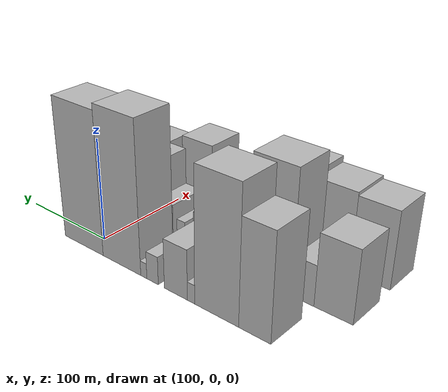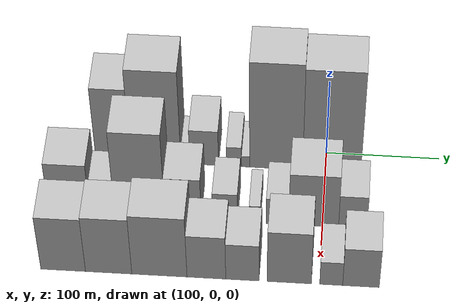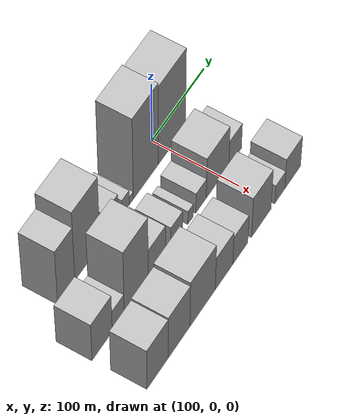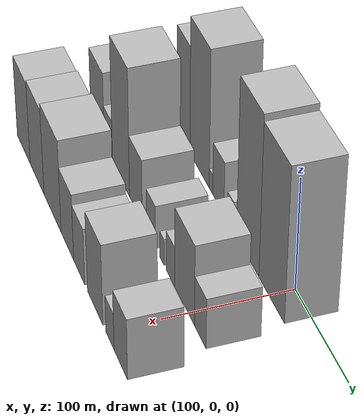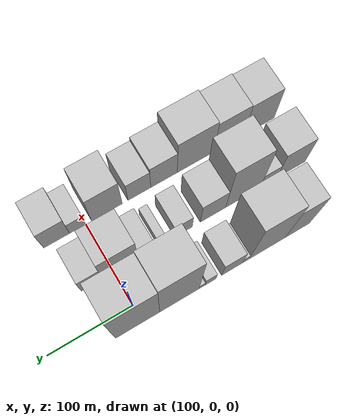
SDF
<sdf version="1.6">
 <world name="default">
  <model name="building_11">
   <static>1</static>
   <pose>100.0000 -189.0056 0 0.000000 0.000000 0.000000</pose>
   <link name="link">
    <pose>0 0 49.50 0 0 0</pose>
    <collision name="collision"><geometry><box><size>40.0000 30.7445 99.0000</size></box></geometry></collision>
    <visual name="visual">
     <cast_shadows>0</cast_shadows>
     <geometry><box><size>40.0000 30.7445 99.0000</size></box></geometry>
     <material>
      <script>
       <uri>model://HANNAS_wall/materials/scripts</uri>
       <uri>model://HANNAS_wall/materials/textures</uri>
       <name>vrc/HANNAS_wall</name>
      </script>
     </material>
    </visual>
   </link>
  </model>
  <model name="building_12">
   <static>1</static>
   <pose>100.0000 -151.0599 0 0.000000 0.000000 0.000000</pose>
   <link name="link">
    <pose>0 0 63.00 0 0 0</pose>
    <collision name="collision"><geometry><box><size>40.0000 45.1471 126.0000</size></box></geometry></collision>
    <visual name="visual">
     <cast_shadows>0</cast_shadows>
     <geometry><box><size>40.0000 45.1471 126.0000</size></box></geometry>
     <material>
      <script>
       <uri>model://HANNAS_wall/materials/scripts</uri>
       <uri>model://HANNAS_wall/materials/textures</uri>
       <name>vrc/HANNAS_wall</name>
      </script>
     </material>
    </visual>
   </link>
  </model>
  <model name="building_13">
   <static>1</static>
   <pose>100.0000 -124.5422 0 0.000000 0.000000 0.000000</pose>
   <link name="link">
    <pose>0 0 9.00 0 0 0</pose>
    <collision name="collision"><geometry><box><size>40.0000 7.8883 18.0000</size></box></geometry></collision>
    <visual name="visual">
     <cast_shadows>0</cast_shadows>
     <geometry><box><size>40.0000 7.8883 18.0000</size></box></geometry>
     <material>
      <script>
       <uri>model://HANNAS_wall/materials/scripts</uri>
       <uri>model://HANNAS_wall/materials/textures</uri>
       <name>vrc/HANNAS_wall</name>
      </script>
     </material>
    </visual>
   </link>
  </model>
  <model name="building_14">
   <static>1</static>
   <pose>100.0000 -107.7938 0 0.000000 0.000000 0.000000</pose>
   <link name="link">
    <pose>0 0 24.00 0 0 0</pose>
    <collision name="collision"><geometry><box><size>40.0000 25.6084 48.0000</size></box></geometry></collision>
    <visual name="visual">
     <cast_shadows>0</cast_shadows>
     <geometry><box><size>40.0000 25.6084 48.0000</size></box></geometry>
     <material>
      <script>
       <uri>model://HANNAS_wall/materials/scripts</uri>
       <uri>model://HANNAS_wall/materials/textures</uri>
       <name>vrc/HANNAS_wall</name>
      </script>
     </material>
    </visual>
   </link>
  </model>
  <model name="building_15">
   <static>1</static>
   <pose>100.0000 -81.2954 0 0.000000 0.000000 0.000000</pose>
   <link name="link">
    <pose>0 0 13.50 0 0 0</pose>
    <collision name="collision"><geometry><box><size>40.0000 13.3885 27.0000</size></box></geometry></collision>
    <visual name="visual">
     <cast_shadows>0</cast_shadows>
     <geometry><box><size>40.0000 13.3885 27.0000</size></box></geometry>
     <material>
      <script>
       <uri>model://HANNAS_wall/materials/scripts</uri>
       <uri>model://HANNAS_wall/materials/textures</uri>
       <name>vrc/HANNAS_wall</name>
      </script>
     </material>
    </visual>
   </link>
  </model>
  <model name="building_16">
   <static>1</static>
   <pose>100.0000 -70.9838 0 0.000000 0.000000 0.000000</pose>
   <link name="link">
    <pose>0 0 7.50 0 0 0</pose>
    <collision name="collision"><geometry><box><size>40.0000 7.2346 15.0000</size></box></geometry></collision>
    <visual name="visual">
     <cast_shadows>0</cast_shadows>
     <geometry><box><size>40.0000 7.2346 15.0000</size></box></geometry>
     <material>
      <script>
       <uri>model://HANNAS_wall/materials/scripts</uri>
       <uri>model://HANNAS_wall/materials/textures</uri>
       <name>vrc/HANNAS_wall</name>
      </script>
     </material>
    </visual>
   </link>
  </model>
  <model name="building_17">
   <static>1</static>
   <pose>100.0000 -43.8087 0 0.000000 0.000000 0.000000</pose>
   <link name="link">
    <pose>0 0 72.00 0 0 0</pose>
    <collision name="collision"><geometry><box><size>40.0000 47.1157 144.0000</size></box></geometry></collision>
    <visual name="visual">
     <cast_shadows>0</cast_shadows>
     <geometry><box><size>40.0000 47.1157 144.0000</size></box></geometry>
     <material>
      <script>
       <uri>model://HANNAS_wall/materials/scripts</uri>
       <uri>model://HANNAS_wall/materials/textures</uri>
       <name>vrc/HANNAS_wall</name>
      </script>
     </material>
    </visual>
   </link>
  </model>
  <model name="building_18">
   <static>1</static>
   <pose>100.0000 5.4919 0 0.000000 0.000000 0.000000</pose>
   <link name="link">
    <pose>0 0 69.00 0 0 0</pose>
    <collision name="collision"><geometry><box><size>40.0000 51.4854 138.0000</size></box></geometry></collision>
    <visual name="visual">
     <cast_shadows>0</cast_shadows>
     <geometry><box><size>40.0000 51.4854 138.0000</size></box></geometry>
     <material>
      <script>
       <uri>model://HANNAS_wall/materials/scripts</uri>
       <uri>model://HANNAS_wall/materials/textures</uri>
       <name>vrc/HANNAS_wall</name>
      </script>
     </material>
    </visual>
   </link>
  </model>
  <model name="building_42">
   <static>1</static>
   <pose>160.0000 -220.6030 0 0.000000 0.000000 0.000000</pose>
   <link name="link">
    <pose>0 0 34.50 0 0 0</pose>
    <collision name="collision"><geometry><box><size>40.0000 36.1512 69.0000</size></box></geometry></collision>
    <visual name="visual">
     <cast_shadows>0</cast_shadows>
     <geometry><box><size>40.0000 36.1512 69.0000</size></box></geometry>
     <material>
      <script>
       <uri>model://HANNAS_wall/materials/scripts</uri>
       <uri>model://HANNAS_wall/materials/textures</uri>
       <name>vrc/HANNAS_wall</name>
      </script>
     </material>
    </visual>
   </link>
  </model>
  <model name="building_43">
   <static>1</static>
   <pose>160.0000 -191.7162 0 0.000000 0.000000 0.000000</pose>
   <link name="link">
    <pose>0 0 19.50 0 0 0</pose>
    <collision name="collision"><geometry><box><size>40.0000 21.6223 39.0000</size></box></geometry></collision>
    <visual name="visual">
     <cast_shadows>0</cast_shadows>
     <geometry><box><size>40.0000 21.6223 39.0000</size></box></geometry>
     <material>
      <script>
       <uri>model://HANNAS_wall/materials/scripts</uri>
       <uri>model://HANNAS_wall/materials/textures</uri>
       <name>vrc/HANNAS_wall</name>
      </script>
     </material>
    </visual>
   </link>
  </model>
  <model name="building_44">
   <static>1</static>
   <pose>160.0000 -158.9829 0 0.000000 0.000000 0.000000</pose>
   <link name="link">
    <pose>0 0 58.50 0 0 0</pose>
    <collision name="collision"><geometry><box><size>40.0000 43.8444 117.0000</size></box></geometry></collision>
    <visual name="visual">
     <cast_shadows>0</cast_shadows>
     <geometry><box><size>40.0000 43.8444 117.0000</size></box></geometry>
     <material>
      <script>
       <uri>model://HANNAS_wall/materials/scripts</uri>
       <uri>model://HANNAS_wall/materials/textures</uri>
       <name>vrc/HANNAS_wall</name>
      </script>
     </material>
    </visual>
   </link>
  </model>
  <model name="building_45">
   <static>1</static>
   <pose>160.0000 -121.3044 0 0.000000 0.000000 0.000000</pose>
   <link name="link">
    <pose>0 0 28.50 0 0 0</pose>
    <collision name="collision"><geometry><box><size>40.0000 31.5126 57.0000</size></box></geometry></collision>
    <visual name="visual">
     <cast_shadows>0</cast_shadows>
     <geometry><box><size>40.0000 31.5126 57.0000</size></box></geometry>
     <material>
      <script>
       <uri>model://HANNAS_wall/materials/scripts</uri>
       <uri>model://HANNAS_wall/materials/textures</uri>
       <name>vrc/HANNAS_wall</name>
      </script>
     </material>
    </visual>
   </link>
  </model>
  <model name="building_46">
   <static>1</static>
   <pose>160.0000 -84.6928 0 0.000000 0.000000 0.000000</pose>
   <link name="link">
    <pose>0 0 19.50 0 0 0</pose>
    <collision name="collision"><geometry><box><size>40.0000 21.7106 39.0000</size></box></geometry></collision>
    <visual name="visual">
     <cast_shadows>0</cast_shadows>
     <geometry><box><size>40.0000 21.7106 39.0000</size></box></geometry>
     <material>
      <script>
       <uri>model://HANNAS_wall/materials/scripts</uri>
       <uri>model://HANNAS_wall/materials/textures</uri>
       <name>vrc/HANNAS_wall</name>
      </script>
     </material>
    </visual>
   </link>
  </model>
  <model name="building_47">
   <static>1</static>
   <pose>160.0000 -58.9150 0 0.000000 0.000000 0.000000</pose>
   <link name="link">
    <pose>0 0 12.00 0 0 0</pose>
    <collision name="collision"><geometry><box><size>40.0000 9.8449 24.0000</size></box></geometry></collision>
    <visual name="visual">
     <cast_shadows>0</cast_shadows>
     <geometry><box><size>40.0000 9.8449 24.0000</size></box></geometry>
     <material>
      <script>
       <uri>model://HANNAS_wall/materials/scripts</uri>
       <uri>model://HANNAS_wall/materials/textures</uri>
       <name>vrc/HANNAS_wall</name>
      </script>
     </material>
    </visual>
   </link>
  </model>
  <model name="building_48">
   <static>1</static>
   <pose>160.0000 -39.0777 0 0.000000 0.000000 0.000000</pose>
   <link name="link">
    <pose>0 0 18.00 0 0 0</pose>
    <collision name="collision"><geometry><box><size>40.0000 19.8298 36.0000</size></box></geometry></collision>
    <visual name="visual">
     <cast_shadows>0</cast_shadows>
     <geometry><box><size>40.0000 19.8298 36.0000</size></box></geometry>
     <material>
      <script>
       <uri>model://HANNAS_wall/materials/scripts</uri>
       <uri>model://HANNAS_wall/materials/textures</uri>
       <name>vrc/HANNAS_wall</name>
      </script>
     </material>
    </visual>
   </link>
  </model>
  <model name="building_49">
   <static>1</static>
   <pose>160.0000 -7.6653 0 0.000000 0.000000 0.000000</pose>
   <link name="link">
    <pose>0 0 36.00 0 0 0</pose>
    <collision name="collision"><geometry><box><size>40.0000 42.9948 72.0000</size></box></geometry></collision>
    <visual name="visual">
     <cast_shadows>0</cast_shadows>
     <geometry><box><size>40.0000 42.9948 72.0000</size></box></geometry>
     <material>
      <script>
       <uri>model://HANNAS_wall/materials/scripts</uri>
       <uri>model://HANNAS_wall/materials/textures</uri>
       <name>vrc/HANNAS_wall</name>
      </script>
     </material>
    </visual>
   </link>
  </model>
  <model name="building_50">
   <static>1</static>
   <pose>160.0000 26.1106 0 0.000000 0.000000 0.000000</pose>
   <link name="link">
    <pose>0 0 22.50 0 0 0</pose>
    <collision name="collision"><geometry><box><size>40.0000 24.5571 45.0000</size></box></geometry></collision>
    <visual name="visual">
     <cast_shadows>0</cast_shadows>
     <geometry><box><size>40.0000 24.5571 45.0000</size></box></geometry>
     <material>
      <script>
       <uri>model://HANNAS_wall/materials/scripts</uri>
       <uri>model://HANNAS_wall/materials/textures</uri>
       <name>vrc/HANNAS_wall</name>
      </script>
     </material>
    </visual>
   </link>
  </model>
  <model name="building_77">
   <static>1</static>
   <pose>220.0000 -218.4346 0 0.000000 0.000000 0.000000</pose>
   <link name="link">
    <pose>0 0 37.50 0 0 0</pose>
    <collision name="collision"><geometry><box><size>40.0000 38.2479 75.0000</size></box></geometry></collision>
    <visual name="visual">
     <cast_shadows>0</cast_shadows>
     <geometry><box><size>40.0000 38.2479 75.0000</size></box></geometry>
     <material>
      <script>
       <uri>model://HANNAS_wall/materials/scripts</uri>
       <uri>model://HANNAS_wall/materials/textures</uri>
       <name>vrc/HANNAS_wall</name>
      </script>
     </material>
    </visual>
   </link>
  </model>
  <model name="building_78">
   <static>1</static>
   <pose>220.0000 -179.5098 0 0.000000 0.000000 0.000000</pose>
   <link name="link">
    <pose>0 0 39.00 0 0 0</pose>
    <collision name="collision"><geometry><box><size>40.0000 39.6016 78.0000</size></box></geometry></collision>
    <visual name="visual">
     <cast_shadows>0</cast_shadows>
     <geometry><box><size>40.0000 39.6016 78.0000</size></box></geometry>
     <material>
      <script>
       <uri>model://HANNAS_wall/materials/scripts</uri>
       <uri>model://HANNAS_wall/materials/textures</uri>
       <name>vrc/HANNAS_wall</name>
      </script>
     </material>
    </visual>
   </link>
  </model>
  <model name="building_79">
   <static>1</static>
   <pose>220.0000 -136.1722 0 0.000000 0.000000 0.000000</pose>
   <link name="link">
    <pose>0 0 42.00 0 0 0</pose>
    <collision name="collision"><geometry><box><size>40.0000 47.0736 84.0000</size></box></geometry></collision>
    <visual name="visual">
     <cast_shadows>0</cast_shadows>
     <geometry><box><size>40.0000 47.0736 84.0000</size></box></geometry>
     <material>
      <script>
       <uri>model://HANNAS_wall/materials/scripts</uri>
       <uri>model://HANNAS_wall/materials/textures</uri>
       <name>vrc/HANNAS_wall</name>
      </script>
     </material>
    </visual>
   </link>
  </model>
  <model name="building_80">
   <static>1</static>
   <pose>220.0000 -96.1420 0 0.000000 0.000000 0.000000</pose>
   <link name="link">
    <pose>0 0 30.00 0 0 0</pose>
    <collision name="collision"><geometry><box><size>40.0000 32.9868 60.0000</size></box></geometry></collision>
    <visual name="visual">
     <cast_shadows>0</cast_shadows>
     <geometry><box><size>40.0000 32.9868 60.0000</size></box></geometry>
     <material>
      <script>
       <uri>model://HANNAS_wall/materials/scripts</uri>
       <uri>model://HANNAS_wall/materials/textures</uri>
       <name>vrc/HANNAS_wall</name>
      </script>
     </material>
    </visual>
   </link>
  </model>
  <model name="building_81">
   <static>1</static>
   <pose>220.0000 -65.5106 0 0.000000 0.000000 0.000000</pose>
   <link name="link">
    <pose>0 0 25.50 0 0 0</pose>
    <collision name="collision"><geometry><box><size>40.0000 28.2760 51.0000</size></box></geometry></collision>
    <visual name="visual">
     <cast_shadows>0</cast_shadows>
     <geometry><box><size>40.0000 28.2760 51.0000</size></box></geometry>
     <material>
      <script>
       <uri>model://HANNAS_wall/materials/scripts</uri>
       <uri>model://HANNAS_wall/materials/textures</uri>
       <name>vrc/HANNAS_wall</name>
      </script>
     </material>
    </visual>
   </link>
  </model>
  <model name="building_82">
   <static>1</static>
   <pose>220.0000 -25.5840 0 0.000000 0.000000 0.000000</pose>
   <link name="link">
    <pose>0 0 36.00 0 0 0</pose>
    <collision name="collision"><geometry><box><size>40.0000 37.5772 72.0000</size></box></geometry></collision>
    <visual name="visual">
     <cast_shadows>0</cast_shadows>
     <geometry><box><size>40.0000 37.5772 72.0000</size></box></geometry>
     <material>
      <script>
       <uri>model://HANNAS_wall/materials/scripts</uri>
       <uri>model://HANNAS_wall/materials/textures</uri>
       <name>vrc/HANNAS_wall</name>
      </script>
     </material>
    </visual>
   </link>
  </model>
  <model name="building_83">
   <static>1</static>
   <pose>220.0000 9.9458 0 0.000000 0.000000 0.000000</pose>
   <link name="link">
    <pose>0 0 16.50 0 0 0</pose>
    <collision name="collision"><geometry><box><size>40.0000 19.4825 33.0000</size></box></geometry></collision>
    <visual name="visual">
     <cast_shadows>0</cast_shadows>
     <geometry><box><size>40.0000 19.4825 33.0000</size></box></geometry>
     <material>
      <script>
       <uri>model://HANNAS_wall/materials/scripts</uri>
       <uri>model://HANNAS_wall/materials/textures</uri>
       <name>vrc/HANNAS_wall</name>
      </script>
     </material>
    </visual>
   </link>
  </model>
  <model name="building_84">
   <static>1</static>
   <pose>220.0000 35.1355 0 0.000000 0.000000 0.000000</pose>
   <link name="link">
    <pose>0 0 27.00 0 0 0</pose>
    <collision name="collision"><geometry><box><size>40.0000 30.8969 54.0000</size></box></geometry></collision>
    <visual name="visual">
     <cast_shadows>0</cast_shadows>
     <geometry><box><size>40.0000 30.8969 54.0000</size></box></geometry>
     <material>
      <script>
       <uri>model://HANNAS_wall/materials/scripts</uri>
       <uri>model://HANNAS_wall/materials/textures</uri>
       <name>vrc/HANNAS_wall</name>
      </script>
     </material>
    </visual>
   </link>
  </model>
 </world>
</sdf>
